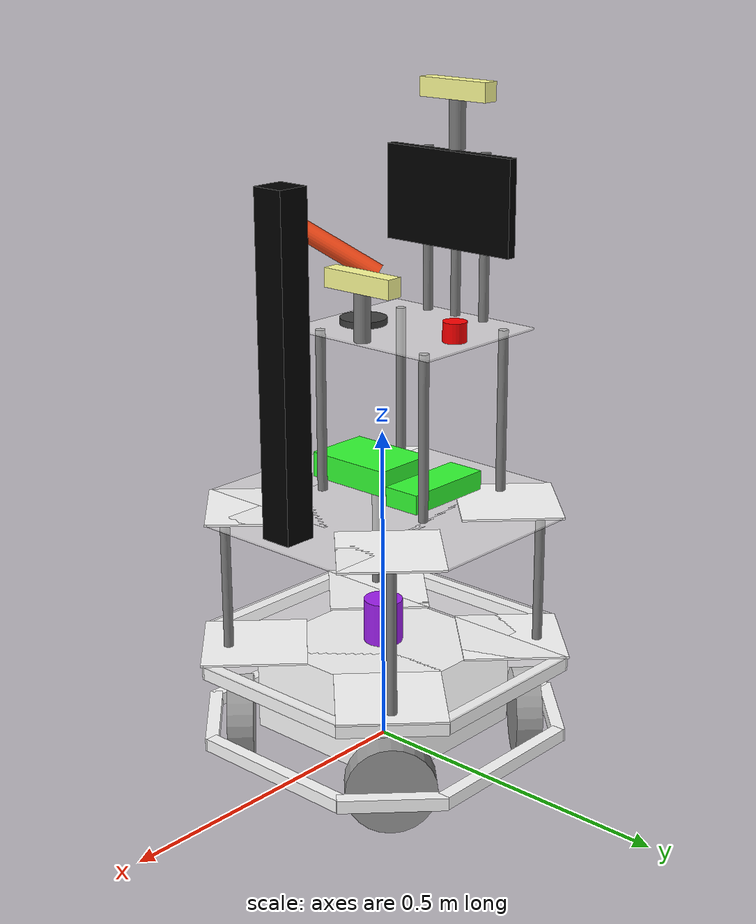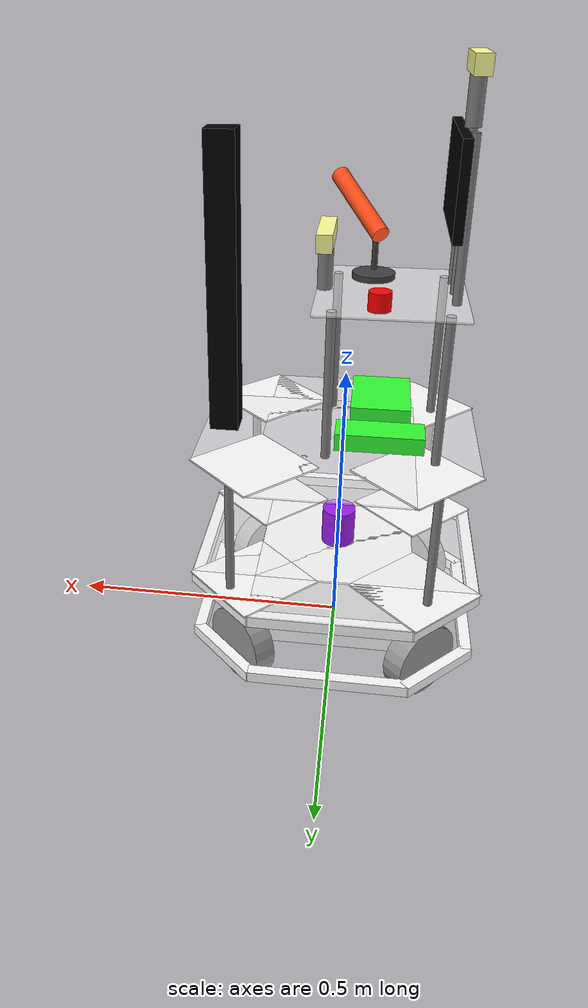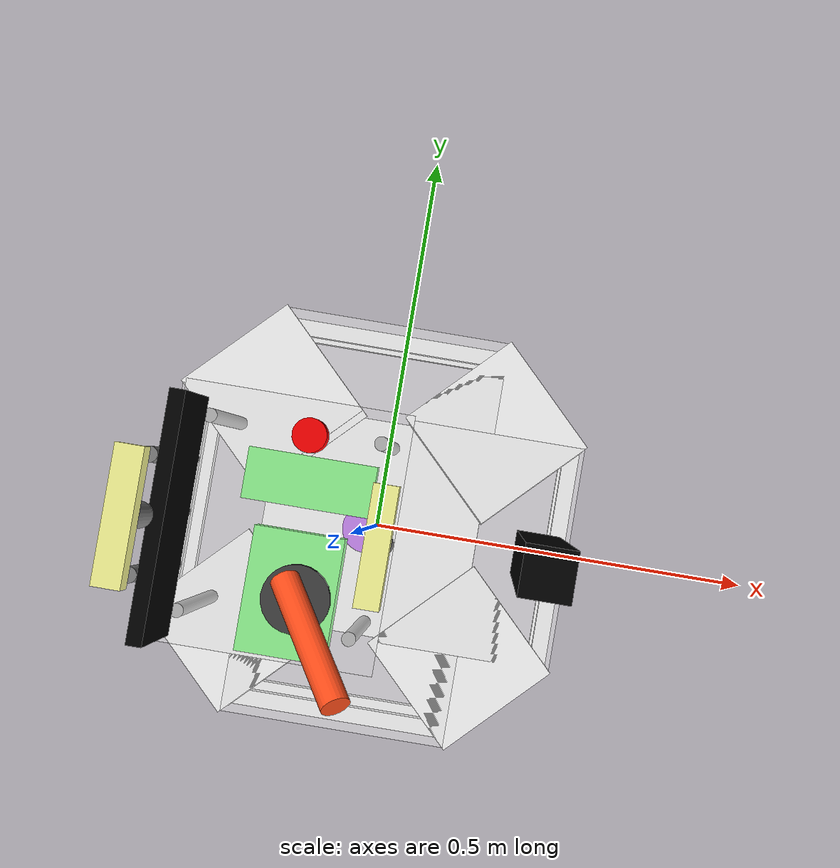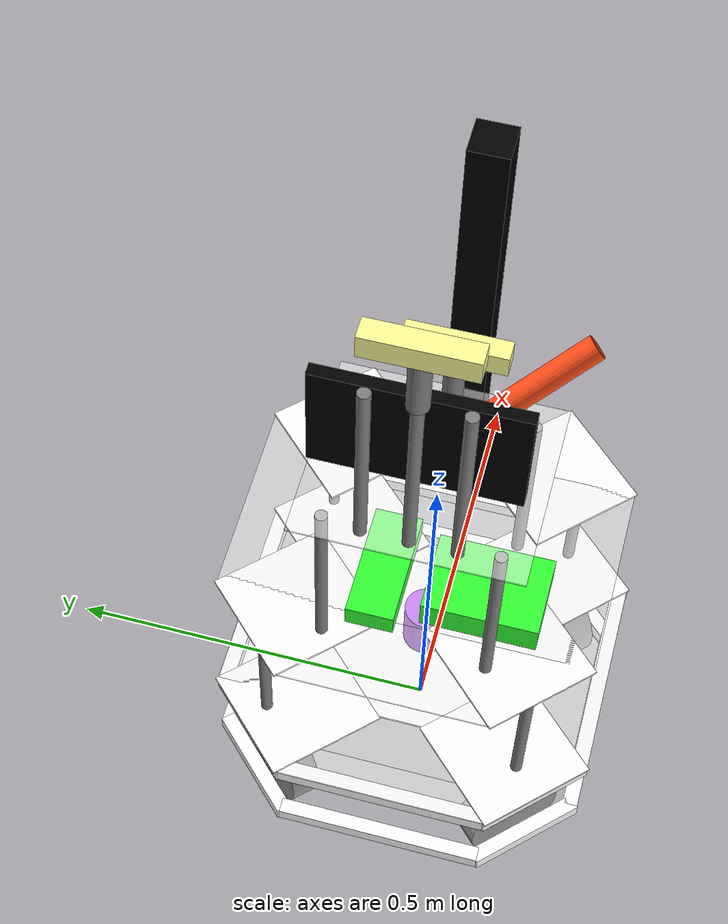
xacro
<?xml version="1.0"?>
<robot xmlns:xacro="http://www.ros.org/wiki/xacro" name="robot">

    <xacro:arg name="prefix" default="" />
    <xacro:arg name="use_sim" default="true" />

    <xacro:property name="package_name" value="main_package" />

    <xacro:include filename="$(find ${package_name})/description/shared/inertial_macros.xacro" />
    <xacro:include filename="$(find ${package_name})/description/shared/materials.xacro" />
    <xacro:include filename="$(find ${package_name})/description/shared/properties.xacro" />
    <xacro:include filename="$(find ${package_name})/description/shared/supports.urdf.xacro" />

    <xacro:include filename="$(find ${package_name})/description/functional/depth_camera.urdf.xacro" />
    <xacro:include filename="$(find ${package_name})/description/functional/display.urdf.xacro" />
    <xacro:include filename="$(find ${package_name})/description/functional/arm/temparm.xacro" />
    <xacro:include filename="$(find ${package_name})/description/functional/lidar.urdf.xacro" />
    <xacro:include filename="$(find ${package_name})/description/functional/mic.urdf.xacro" />
    <xacro:include filename="$(find ${package_name})/description/functional/stop_button.urdf.xacro" />
    <xacro:include filename="$(find ${package_name})/description/functional/wheel/wheel_100mm_light.urdf.xacro" />

    <xacro:include filename="$(find ${package_name})/description/robot/robot_core.xacro" />
    <xacro:include filename="$(find ${package_name})/description/robot/robot_level_1.xacro" />
    <xacro:include filename="$(find ${package_name})/description/robot/robot_level_2.xacro" />
    <xacro:include filename="$(find ${package_name})/description/robot/robot_level_3.xacro" />

    <xacro:include filename="$(find ${package_name})/description/gazebo/robot_gazebo.gazebo.xacro" />
    <xacro:robot_gazebo prefix="" />

    <xacro:include filename="$(find ${package_name})/description/ros2_control/robot_ros2.ros2_control.xacro" />
    <xacro:robot_ros2_control name="robot" use_sim="$(arg use_sim)" />

</robot>

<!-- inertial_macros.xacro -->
<robot xmlns:xacro="http://www.ros.org/wiki/xacro">

    <xacro:macro name="inertial_cylinder" params="mass length radius *origin">
        <inertial>
            <xacro:insert_block name="origin" />
            <mass value="${mass}" />
            <inertia
                ixx="${(1/12) * mass * (3*radius*radius + length*length)}"
                ixy="0.0"
                ixz="0.0"
                iyy="${(1/12) * mass * (3*radius*radius + length*length)}"
                iyz="0.0"
                izz="${(1/2) * mass * (radius*radius)}"
            />
        </inertial>
    </xacro:macro>

    <xacro:macro name="inertial_box" params="mass x y z *origin">
        <inertial>
            <xacro:insert_block name="origin" />
            <mass value="${mass}" />
            <inertia
                ixx="${(1/12) * mass * (y*y + z*z)}"
                ixy="0.0"
                ixz="0.0"
                iyy="${(1/12) * mass * (x*x + z*z)}"
                iyz="0.0"
                izz="${(1/12) * mass * (x*x + y*y)}"
            />
        </inertial>
    </xacro:macro>

    <xacro:macro name="inertial_sphere" params="mass radius *origin">
        <inertial>
            <xacro:insert_block name="origin" />
            <mass value="${mass}" />
            <inertia
                ixx="${(2/5) * mass * (radius*radius)}"
                ixy="0.0"
                ixz="0.0"
                iyy="${(2/5) * mass * (radius*radius)}"
                iyz="0.0"
                izz="${(2/5) * mass * (radius*radius)}"
            />
        </inertial>
    </xacro:macro>

</robot>

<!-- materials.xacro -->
<robot xmlns:xacro="http://www.ros.org/wiki/xacro">

    <material name="black">
        <color rgba="0 0 0 1" />
    </material>

    <material name="grey">
        <color rgba="0.5 0.5 0.5 1" />
    </material>

    <material name="dark_grey">
        <color rgba="0.25 0.25 0.25 1" />
    </material>

    <material name="orange">
        <color rgba="1 0.3 0.1 1" />
    </material>

    <material name="white">
        <color rgba="1 1 1 1" />
    </material>

    <material name="white_transparent">
        <color rgba="1 1 1 0.5" />
    </material>

    <material name="red">
        <color rgba="1 0 0 1" />
    </material>

    <material name="green">
        <color rgba="0.2 1 0.2 1" />
    </material>

    <material name="blue">
        <color rgba="0.2 0.2 1 1" />
    </material>

    <material name="gray">
        <color rgba="0.6 0.6 0.6 1" />
    </material>

    <material name="yellow">
        <color rgba="1 1 0.6 1" />
    </material>

    <material name="purple">
        <color rgba="0.627 0.125 0.941 1" />
    </material>

</robot>

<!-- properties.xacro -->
<robot xmlns:xacro="http://www.ros.org/wiki/xacro">

    <xacro:property name="metal_thickness" value="0.003" />
    <xacro:property name="metal_density" value="7850.0" />

    <xacro:property name="wheel_radius" value="0.0675" />
    <xacro:property name="wheel_thickness" value="0.04" />
    <xacro:property name="wheel_padding" value="0.005" />

    <xacro:property name="chassis_length" value="0.500" />
    <xacro:property name="chassis_width" value="0.500" />

    <xacro:property name="chassis_inner_length" value="0.275" />
    <xacro:property name="chassis_inner_width" value="0.275" />

    <xacro:property name="chassis_outer_side" value="0.272" />
    <xacro:property name="chassis_outer_corner" value="0.160" />
    <xacro:property name="chassis_corner_margin" value="0.080" />
    <xacro:property name="chassis_outer_thickness" value="0.020" />

    <xacro:property name="chassis_height" value="0.140" />
    <xacro:property name="chassis_clearance" value="0.020" />

    <xacro:property name="chassis_empty_space_length" value="${(chassis_length - chassis_outer_thickness*4)/3}" />
    <xacro:property name="chassis_empty_space_width" value="${(chassis_width - chassis_outer_thickness*4)/3}" />

    <xacro:property name="level_1_height_displacement" value="${chassis_clearance + chassis_height}" />
    <xacro:property name="level_1_length_displacement" value="0.000" />
    <xacro:property name="level_1_width_displacement" value="0.000" />

    <xacro:property name="level_1_base_length" value="0.500" />
    <xacro:property name="level_1_base_width" value="0.500" />

    <xacro:property name="level_1_support_height" value="0.225" />
    <xacro:property name="level_1_support_radius" value="0.0075" />
    <xacro:property name="level_1_support_displacement_x" value="${chassis_length/8}" />
    <xacro:property name="level_1_support_displacement_y" value="${chassis_width/8}" />

    <xacro:property name="level_1_corner_length" value="${chassis_outer_corner * level_1_base_length / chassis_length}" />
    <xacro:property name="level_1_corner_width" value="${chassis_outer_corner * level_1_base_width / chassis_width}" />
    <xacro:property name="level_1_empty_space_length" value="${(level_1_base_length - chassis_outer_thickness*4)/3}" />
    <xacro:property name="level_1_empty_space_width" value="${(level_1_base_width - chassis_outer_thickness*4)/3}" />

    <xacro:property name="level_1_center_x"
        value="${-chassis_length/2 + level_1_length_displacement + level_1_base_length/2}" />
    <xacro:property name="level_1_center_y"
        value="${-chassis_width/2 + level_1_width_displacement + level_1_base_width/2}" />
    <xacro:property name="level_1_center_z"
        value="${level_1_height_displacement + metal_thickness}" />

    <xacro:property name="lidar_radius" value="0.030" />
    <xacro:property name="lidar_length" value="0.068" />

    <xacro:property name="lidar_weight" value="0.400" />

    <xacro:property name="level_2_height_displacement"
        value="${level_1_height_displacement + metal_thickness + level_1_support_height}" />
    <xacro:property name="level_2_length_displacement" value="0.020" />
    <xacro:property name="level_2_width_displacement" value="0.020" />

    <xacro:property name="level_2_base_length" value="0.475" />
    <xacro:property name="level_2_base_width" value="0.475" />

    <xacro:property name="level_2_support_height" value="0.253" />
    <xacro:property name="level_2_support_radius" value="0.0075" />
    <xacro:property name="level_2_support_displacement_x"
        value="${(level_2_base_length + chassis_corner_margin)/8}" />
    <xacro:property name="level_2_support_displacement_y"
        value="${(level_2_base_width + chassis_corner_margin)/8}" />

    <xacro:property name="level_2_corner_length" value="${chassis_outer_corner * level_2_base_length / chassis_length}" />
    <xacro:property name="level_2_corner_width" value="${chassis_outer_corner * level_2_base_width / chassis_width}" />
    <xacro:property name="level_2_empty_space_length" value="${(level_2_base_length - chassis_outer_thickness*4)/3}" />
    <xacro:property name="level_2_empty_space_width" value="${(level_2_base_width - chassis_outer_thickness*4)/3}" />

    <xacro:property name="level_2_center_x"
        value="${-chassis_length/2 + level_2_length_displacement + level_2_base_length/2}" />
    <xacro:property name="level_2_center_y"
        value="${-chassis_width/2 + level_2_width_displacement + level_2_base_width/2}" />
    <xacro:property name="level_2_center_z"
        value="${level_2_height_displacement + metal_thickness}" />

    <xacro:property name="cpu_length" value="0.105" />
    <xacro:property name="cpu_width" value="0.145" />
    <xacro:property name="cpu_height" value="0.040" />

    <xacro:property name="cpu_weight" value="0.400" />

    <xacro:property name="cpu_offset_x" value="-0.070" />
    <xacro:property name="cpu_offset_y" value="-0.090" />

    <xacro:property name="network_length" value="0.150" />
    <xacro:property name="network_width" value="0.060" />
    <xacro:property name="network_height" value="0.030" />

    <xacro:property name="network_weight" value="0.150" />

    <xacro:property name="network_offset_x" value="-0.070" />
    <xacro:property name="network_offset_y" value="0.040" />

    <xacro:property name="level_3_height_displacement"
        value="${level_2_height_displacement + metal_thickness + level_2_support_height}" />
    <xacro:property name="level_3_length_displacement" value="0.065" />
    <xacro:property name="level_3_width_displacement" value="0.114" />

    <xacro:property name="level_3_base_length" value="0.240" />
    <xacro:property name="level_3_base_width" value="0.272" />

    <xacro:property name="level_3_support_height" value="0.252" />
    <xacro:property name="level_3_support_radius" value="0.0075" />
    <xacro:property name="level_3_support_displacement_x" value="${level_3_base_length/8}" />
    <xacro:property name="level_3_support_displacement_y" value="${level_3_base_width/8}" />

    <xacro:property name="level_3_center_x"
        value="${-chassis_length/2 + level_3_length_displacement + level_3_base_length/2}" />
    <xacro:property name="level_3_center_y"
        value="${-chassis_width/2 + level_3_width_displacement + level_3_base_width/2}" />
    <xacro:property name="level_3_center_z"
        value="${level_3_height_displacement + metal_thickness}" />

    <xacro:property name="intel_camera_length" value="0.026" />
    <xacro:property name="intel_camera_width" value="0.124" />
    <xacro:property name="intel_camera_height" value="0.029" />

    <xacro:property name="intel_camera_and_fixture_weight" value="0.380" />

    <xacro:property name="intel_camera_fixture_radius" value="0.0125" />
    <xacro:property name="intel_camera_fixture_length" value="0.073" />

    <xacro:property name="display_length" value="0.015" />
    <xacro:property name="display_width" value="0.235" />
    <xacro:property name="display_height" value="0.145" />

    <xacro:property name="display_weight" value="0.97" />

    <xacro:property name="display_support_radius" value="0.0075" />
    <xacro:property name="display_support_height" value="0.252" />

    <xacro:property name="display_offset_x" value="-0.100" />
    <xacro:property name="display_offset_y" value="0.055" />

    <xacro:property name="mic_base_length" value="0.010" />
    <xacro:property name="mic_base_radius" value="0.036" />

    <xacro:property name="mic_support_length" value="0.070" />
    <xacro:property name="mic_support_radius" value="0.005" />

    <xacro:property name="mic_length" value="0.150" />
    <xacro:property name="mic_radius" value="0.015" />

    <xacro:property name="mic_weight" value="0.05" />

    <xacro:property name="mic_offset_x" value="0.030" />
    <xacro:property name="mic_offset_y" value="0.070" />

    <xacro:property name="stop_button_radius" value="0.018" />
    <xacro:property name="stop_button_length" value="0.030" />
    <xacro:property name="stop_button_weight" value="0.046" />

    <xacro:property name="stop_button_offset_y" value="0.080" />

</robot>

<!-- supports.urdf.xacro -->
<robot xmlns:xacro="http://www.ros.org/wiki/xacro">

    <xacro:macro name="corner_frame" params="nameprefix parent bx by bz *origin">
        <joint name="${nameprefix}_joint" type="fixed">
            <parent link="${parent}" />
            <child link="${nameprefix}_link" />
            <xacro:insert_block name="origin" />
        </joint>

        <link name="${nameprefix}_link">
            <visual>
                <geometry>
                    <box size="${bx} ${by} ${bz}" />
                </geometry>
                <material name="white" />
            </visual>
            <collision>
                <geometry>
                    <box size="${bx} ${by} ${bz}" />
                </geometry>
            </collision>
            <xacro:inertial_box
                mass="${bx * by * metal_thickness * 4 * metal_density}"
                x="${bx}" y="${by}"
                z="${bz}">
                <origin xyz="0 0 0" rpy="0 0 0" />
            </xacro:inertial_box>
        </link>

        <gazebo reference="${nameprefix}_link">
            <material>Gazebo/White</material>
        </gazebo>
    </xacro:macro>

    <xacro:macro name="side_frame" params="nameprefix bx by bz *origin">
        <joint name="${nameprefix}_joint" type="fixed">
            <parent link="base_link" />
            <child link="${nameprefix}_link" />
            <xacro:insert_block name="origin" />
        </joint>

        <link name="${nameprefix}_link">
            <visual>
                <geometry>
                    <box size="${bx} ${by} ${bz}" />
                </geometry>
                <material name="white" />
            </visual>
            <collision>
                <geometry>
                    <box size="${bx} ${by} ${bz}" />
                </geometry>
            </collision>
            <xacro:inertial_box
                mass="${bx * by * metal_thickness * 4 * metal_density}"
                x="${bx}" y="${by}"
                z="${bz}">
                <origin xyz="0 0 0" rpy="0 0 0" />
            </xacro:inertial_box>
        </link>

        <gazebo reference="${nameprefix}_link">
            <material>Gazebo/White</material>
        </gazebo>
    </xacro:macro>

    <xacro:macro name="support_cylinder" params="nameprefix parent length radius *origin">
        <joint name="${nameprefix}_joint" type="fixed">
            <parent link="${parent}" />
            <child link="${nameprefix}_link" />
            <xacro:insert_block name="origin" />
        </joint>

        <link name="${nameprefix}_link">
            <visual>
                <geometry>
                    <cylinder radius="${radius}" length="${length}" />
                </geometry>
                <material name="grey" />
            </visual>
            <collision>
                <geometry>
                    <cylinder radius="${radius}" length="${length}" />
                </geometry>
            </collision>
            <xacro:inertial_cylinder
                mass="${2 * pi * radius * length * metal_thickness * metal_density}"
                radius="${radius}" length="${length}">
                <origin xyz="0 0 0" rpy="0 0 0" />
            </xacro:inertial_cylinder>
        </link>

        <gazebo reference="${nameprefix}_link">
            <material>Gazebo/Grey</material>
        </gazebo>
    </xacro:macro>

    <xacro:macro name="base_plate" params="nameprefix parent bx by bz *origin">
        <joint name="${nameprefix}_joint" type="fixed">
            <parent link="${parent}" />
            <child link="${nameprefix}_link" />
            <xacro:insert_block name="origin" />
        </joint>

        <link name="${nameprefix}_link">
            <visual>
                <geometry>
                    <box size="${bx} ${by} ${bz}" />
                </geometry>
                <material name="white_transparent" />
            </visual>
            <collision>
                <geometry>
                    <box size="${bx} ${by} ${bz}" />
                </geometry>
            </collision>
            <xacro:inertial_box
                mass="${bx * by * metal_thickness * 4 * metal_density}"
                x="${bx}" y="${by}"
                z="${bz}">
                <origin xyz="0 0 0" rpy="0 0 0" />
            </xacro:inertial_box>
        </link>

        <gazebo reference="${nameprefix}_link">
            <material>Gazebo/White</material>
        </gazebo>
    </xacro:macro>
</robot>

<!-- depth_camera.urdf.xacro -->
<robot xmlns:xacro="http://www.ros.org/wiki/xacro">

    <xacro:macro name="depth_camera"
        params="nameprefix parent camera_length camera_width camera_height mass fixture_radius fixture_length *origin">

        <joint name="${nameprefix}_fixture_joint" type="fixed">
            <parent link="${parent}" />
            <child link="${nameprefix}_fixture_link" />
            <xacro:insert_block name="origin" />
        </joint>

        <link name="${nameprefix}_fixture_link">
            <visual>
                <geometry>
                    <cylinder radius="${fixture_radius}" length="${fixture_length}" />
                </geometry>
                <material name="grey" />
            </visual>
            <collision>
                <geometry>
                    <cylinder radius="${fixture_radius}" length="${fixture_length}" />
                </geometry>
            </collision>
            <xacro:inertial_cylinder
                mass="${mass}"
                radius="${fixture_radius}" length="${fixture_length}">
                <origin xyz="0 0 0" rpy="0 0 0" />
            </xacro:inertial_cylinder>
        </link>

        <gazebo reference="${nameprefix}_fixture_link">
            <material>Gazebo/Grey</material>
        </gazebo>

        <joint name="${nameprefix}_joint" type="fixed">
            <parent link="${nameprefix}_fixture_link" />
            <child link="${nameprefix}_link" />
            <origin xyz="0 0 ${camera_height/2 + fixture_length/2}" rpy="0 0 0" />
        </joint>

        <link name="${nameprefix}_link">
            <visual>
                <geometry>
                    <box size="${camera_length} ${camera_width} ${camera_height}" />
                </geometry>
                <material name="yellow" />
            </visual>
        </link>

        <joint name="${nameprefix}_optical_joint" type="fixed">
            <parent link="${nameprefix}_link" />
            <child link="${nameprefix}_link_optical" />
            <origin xyz="0 0 0" rpy="${-pi/2} 0 ${-pi/2}" />
        </joint>

        <link name="${nameprefix}_link_optical"></link>

        <gazebo reference="${nameprefix}_link">
            <material>Gazebo/Yellow</material>
            <sensor name="${nameprefix}" type="depth">
                <pose> 0 0 0 0 0 0 </pose>
                <visualize>true</visualize>
                <update_rate>10</update_rate>
                <camera>
                    <horizontal_fov>1.089</horizontal_fov>
                    <image>
                        <format>B8G8R8</format>
                        <width>1280</width>
                        <height>720</height>
                    </image>
                    <clip>
                        <near>0.05</near>
                        <far>8.0</far>
                    </clip>
                </camera>
                <plugin name="${nameprefix}_controller" filename="libgazebo_ros_camera.so">
                    <frame_name>${nameprefix}_link_optical</frame_name>
                    <min_depth>0.1</min_depth>
                    <max_depth>100.0</max_depth>
                </plugin>
            </sensor>
        </gazebo>

    </xacro:macro>

</robot>

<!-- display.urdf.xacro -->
<robot xmlns:xacro="http://www.ros.org/wiki/xacro">

    <xacro:macro name="display" params="nameprefix parent bx by bz mass *origin">
        <joint name="${nameprefix}_joint" type="fixed">
            <parent link="${parent}" />
            <child link="${nameprefix}_link" />
            <xacro:insert_block name="origin" />
        </joint>

        <link name="${nameprefix}_link">
            <visual>
                <geometry>
                    <box size="${bx} ${by} ${bz}" />
                </geometry>
                <material name="black" />
            </visual>
            <collision>
                <geometry>
                    <box size="${bx} ${by} ${bz}" />
                </geometry>
            </collision>
            <xacro:inertial_box
                mass="${mass}"
                x="${bx}" y="${by}" z="${bz}">
                <origin xyz="0 0 0" rpy="0 0 0" />
            </xacro:inertial_box>
        </link>

        <gazebo reference="${nameprefix}_link">
            <material>Gazebo/Black</material>
        </gazebo>
    </xacro:macro>

</robot>

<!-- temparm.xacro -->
<robot xmlns:xacro="http://www.ros.org/wiki/xacro">

    <xacro:macro name="temparm" params="nameprefix parent bx by bz mass *origin">
        <joint name="${nameprefix}_joint" type="fixed">
            <parent link="${parent}" />
            <child link="${nameprefix}_link" />
            <xacro:insert_block name="origin" />
        </joint>

        <link name="${nameprefix}_link">
            <visual>
                <geometry>
                    <box size="${bx} ${by} ${bz}" />
                </geometry>
                <material name="black" />
            </visual>
            <collision>
                <geometry>
                    <box size="${bx} ${by} ${bz}" />
                </geometry>
            </collision>
            <xacro:inertial_box
                mass="${mass}"
                x="${bx}" y="${by}" z="${bz}">
                <origin xyz="0 0 0" rpy="0 0 0" />
            </xacro:inertial_box>
        </link>

        <gazebo reference="${nameprefix}_link">
            <material>Gazebo/Black</material>
        </gazebo>
    </xacro:macro>

</robot>

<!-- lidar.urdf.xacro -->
<robot xmlns:xacro="http://www.ros.org/wiki/xacro">

    <xacro:macro name="lidar" params="nameprefix parent length radius mass *origin *frame_name">
        <joint name="${nameprefix}_joint" type="fixed">
            <parent link="${parent}" />
            <child link="${nameprefix}_frame" />
            <xacro:insert_block name="origin" />
        </joint>

        <link name="${nameprefix}_frame">
            <visual>
                <geometry>
                    <cylinder length="${length}" radius="${radius}" />
                </geometry>
                <material name="purple" />
            </visual>
            <collision>
                <geometry>
                    <cylinder length="${length}" radius="${radius}" />
                </geometry>
            </collision>
            <xacro:inertial_cylinder
                mass="${mass}"
                length="${length}" radius="${radius}">
                <origin xyz="0 0 0" rpy="0 0 0" />
            </xacro:inertial_cylinder>
        </link>

        <gazebo reference="${nameprefix}_frame">
            <material>Gazebo/Purple</material>
            <sensor name="${nameprefix}" type="ray">
                <pose> 0 0 0 0 0 0 </pose>
                <visualize>false</visualize>
                <update_rate>10</update_rate>
                <ray>
                    <scan>
                        <horizontal>
                            <sample>360</sample>
                            <resolution>1</resolution>
                            <min_angle>-3.14</min_angle>
                            <max_angle>3.14</max_angle>
                        </horizontal>
                    </scan>
                    <range>
                        <min>0.3</min>
                        <max>12</max>
                        <resolution>0.01</resolution>
                    </range>
                </ray>
                <plugin name="${nameprefix}_controller" filename="libgazebo_ros_ray_sensor.so">
                    <ros>

                        <argument>~/out:=scan</argument>
                    </ros>
                    <output_type>sensor_msgs/LaserScan</output_type>

                    <xacro:insert_block name="frame_name" />
                </plugin>
            </sensor>
        </gazebo>
    </xacro:macro>

</robot>

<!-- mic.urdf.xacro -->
<robot xmlns:xacro="http://www.ros.org/wiki/xacro">

    <xacro:macro name="mic"
        params="nameprefix parent base_length base_radius support_length support_radius mic_length mic_radius mass *origin">

        <joint name="${nameprefix}_base_joint" type="fixed">
            <parent link="${parent}" />
            <child link="${nameprefix}_base_link" />
            <xacro:insert_block name="origin" />
        </joint>

        <link name="${nameprefix}_base_link">
            <visual>
                <geometry>
                    <cylinder length="${base_length}" radius="${base_radius}" />
                </geometry>
                <material name="dark_grey" />
            </visual>
            <collision>
                <geometry>
                    <cylinder length="${base_length}" radius="${base_radius}" />
                </geometry>
            </collision>
            <xacro:inertial_cylinder
                mass="${mass/4}"
                length="${base_length}" radius="${base_radius}">
                <origin xyz="0 0 0" rpy="0 0 0" />
            </xacro:inertial_cylinder>
        </link>

        <gazebo reference="${nameprefix}_base_link">
            <material>Gazebo/DarkGrey</material>
        </gazebo>

        <joint name="${nameprefix}_support_joint" type="fixed">
            <parent link="${nameprefix}_base_link" />
            <child link="${nameprefix}_support_link" />
            <origin xyz="0 0 ${base_length + support_length/2}" rpy="0 0 0" />
        </joint>

        <link name="${nameprefix}_support_link">
            <visual>
                <geometry>
                    <cylinder length="${support_length}" radius="${support_radius}" />
                </geometry>
                <material name="dark_grey" />
            </visual>
            <collision>
                <geometry>
                    <cylinder length="${support_length}" radius="${support_radius}" />
                </geometry>
            </collision>
            <xacro:inertial_cylinder
                mass="${mass/4}"
                length="${support_length}" radius="${support_radius}">
                <origin xyz="0 0 0" rpy="0 0 0" />
            </xacro:inertial_cylinder>
        </link>

        <gazebo reference="${nameprefix}_support_link">
            <material>Gazebo/DarkGrey</material>
        </gazebo>

        <joint name="${nameprefix}_joint" type="fixed">
            <parent link="${nameprefix}_support_link" />
            <child link="${nameprefix}_link" />
            <origin xyz="${mic_length/5} -${mic_length/5} ${support_length/2 + mic_length/5}" rpy="${pi/4} ${pi/4} 0" />
        </joint>

        <link name="${nameprefix}_link">
            <visual>
                <geometry>
                    <cylinder length="${mic_length}" radius="${mic_radius}" />
                </geometry>
                <material name="orange" />
            </visual>
            <collision>
                <geometry>
                    <cylinder length="${mic_length}" radius="${mic_radius}" />
                </geometry>
            </collision>
            <xacro:inertial_cylinder
                mass="${mass/2}"
                length="${mic_length}" radius="${mic_radius}">
                <origin xyz="0 0 0" rpy="0 0 0" />
            </xacro:inertial_cylinder>
        </link>

        <gazebo reference="${nameprefix}_link">
            <material>Gazebo/Orange</material>
        </gazebo>
    </xacro:macro>

</robot>

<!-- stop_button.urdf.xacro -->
<robot xmlns:xacro="http://www.ros.org/wiki/xacro">

    <xacro:macro name="stop_button" params="nameprefix parent length radius mass *origin">
        <joint name="${nameprefix}_joint" type="fixed">
            <parent link="${parent}" />
            <child link="${nameprefix}_link" />
            <xacro:insert_block name="origin" />
        </joint>

        <link name="${nameprefix}_link">
            <visual>
                <geometry>
                    <cylinder length="${length}" radius="${radius}" />
                </geometry>
                <material name="red" />
            </visual>
            <collision>
                <geometry>
                    <cylinder length="${length}" radius="${radius}" />
                </geometry>
            </collision>
            <xacro:inertial_cylinder
                mass="${mass}"
                length="${length}" radius="${radius}">
                <origin xyz="0 0 0" rpy="0 0 0" />
            </xacro:inertial_cylinder>
        </link>

        <gazebo reference="${nameprefix}_link">
            <material>Gazebo/Red</material>
        </gazebo>
    </xacro:macro>

</robot>

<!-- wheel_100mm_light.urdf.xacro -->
<robot xmlns:xacro="http://ros.org/wiki/xacro">

  <xacro:macro name="omni_wheel" params="prefix parent *origin">
    <joint name="${prefix}_shaft_joint" type="continuous">
      <parent link="${parent}" />
      <child link="${prefix}_housing_link" />
      <xacro:insert_block name="origin" />
      <axis xyz="0 0 1" />
      <dynamics damping="0.7" />
    </joint>
    <transmission name="${prefix}_shaft_trans">
      <type>transmission_interface/SimpleTransmission</type>
      <joint name="${prefix}_shaft_joint">
        <hardwareInterface>hardware_interface/VelocityJointInterface</hardwareInterface>
      </joint>
      <actuator name="${prefix}_shaft_motor">
        <hardwareInterface>hardware_interface/VelocityJointInterface</hardwareInterface>
        <mechanicalReduction>1</mechanicalReduction>
      </actuator>
    </transmission>

    <link name="${prefix}_housing_link">
      <visual>
        <geometry>
          <cylinder length="0.040" radius="0.0675" />
        </geometry>
        <origin xyz="0 0 0" rpy="0 0 0" />
        <material name="gray" />
      </visual>
      <collision>
        <geometry>
          <sphere radius="0.0675" />
        </geometry>
        <origin xyz="0 0 0" rpy="0 0 0" />
        <material name="gray" />
      </collision>

      <inertial>
        <mass value="0.25" />
        <inertia ixx="0.00235" ixy="0" ixz="0" iyy="0.00235" iyz="0" izz="0.015" />
      </inertial>
    </link>
    <gazebo reference="${prefix}_housing_link">
      <material>Gazebo/Gray</material>

    </gazebo>

  </xacro:macro>
</robot>

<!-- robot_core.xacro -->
<robot xmlns:xacro="http://www.ros.org/wiki/xacro">

    <link name="base_link"></link>

    <joint name="base_footprint_joint" type="fixed">
        <parent link="base_link" />
        <child link="base_footprint" />
        <origin xyz="0 0 0" rpy="0 0 0" />
    </joint>

    <link name="base_footprint">
    </link>

    <joint name="chassis_joint" type="fixed">
        <parent link="base_link" />
        <child link="chassis" />
        <origin xyz="0 0 0" />
    </joint>

    <link name="chassis">
        <visual>
            <origin xyz="0 0 ${chassis_height/2 + chassis_clearance}" />
            <geometry>
                <box size="${chassis_inner_length} ${chassis_inner_width} ${chassis_height}" />
            </geometry>
            <material name="white" />
        </visual>
        <collision>
            <origin xyz="0 0 ${chassis_height/2 + chassis_clearance}" />
            <geometry>
                <box size="${chassis_inner_length} ${chassis_inner_width} ${chassis_height}" />
            </geometry>
        </collision>
        <xacro:inertial_box mass="${chassis_inner_width * chassis_inner_length * metal_thickness * metal_density}"
            x="${chassis_inner_length}" y="${chassis_inner_width}" z="${chassis_height}">
            <origin xyz="0 0 ${chassis_height/2 + chassis_clearance}" rpy="0 0 0" />
        </xacro:inertial_box>
    </link>

    <gazebo reference="chassis">
        <material>Gazebo/White</material>
    </gazebo>

    <xacro:omni_wheel prefix="wheel1" parent="base_link">
        <origin
            xyz="-${chassis_inner_length/2 + wheel_thickness/2} ${chassis_inner_width/2 + wheel_thickness/2} ${wheel_radius/2}"
            rpy="0 ${pi/2} ${pi*3/4}" />

    </xacro:omni_wheel>

    <xacro:omni_wheel prefix="wheel0" parent="base_link">
        <origin
            xyz="${chassis_inner_length/2 + wheel_thickness/2} ${chassis_inner_width/2 + wheel_thickness/2} ${wheel_radius/2}"
            rpy="0 ${pi/2} ${pi/4}" />

    </xacro:omni_wheel>

    <xacro:omni_wheel prefix="wheel3" parent="base_link">
        <origin
            xyz="-${chassis_inner_length/2 + wheel_thickness/2} -${chassis_inner_width/2 + wheel_thickness/2} ${wheel_radius/2}"
            rpy="0 ${pi/2} ${-pi*3/4}" />

    </xacro:omni_wheel>

    <xacro:omni_wheel prefix="wheel2" parent="base_link">
        <origin
            xyz="${chassis_inner_length/2 + wheel_thickness/2} -${chassis_inner_width/2 + wheel_thickness/2} ${wheel_radius/2}"
            rpy="0 ${pi/2} ${-pi/4}" />

    </xacro:omni_wheel>

    <xacro:corner_frame nameprefix="frame_left_corner_top" parent="base_link" bx="${chassis_outer_corner}"
        by="${chassis_outer_thickness}"
        bz="${chassis_outer_thickness}">
        <origin
            xyz="-${chassis_length/2 - chassis_empty_space_length/2 + chassis_outer_thickness*135/360} ${chassis_width/2 - chassis_empty_space_width/2 + chassis_outer_thickness*135/360} ${chassis_height + chassis_clearance - chassis_outer_thickness/2}"
            rpy="0 0 0.785" />
    </xacro:corner_frame>

    <xacro:corner_frame nameprefix="frame_left_corner_bottom" parent="base_link" bx="${chassis_outer_corner}"
        by="${chassis_outer_thickness}" bz="${chassis_outer_thickness}">
        <origin
            xyz="-${chassis_length/2 - chassis_empty_space_length/2 + chassis_outer_thickness*135/360} ${chassis_width/2 - chassis_empty_space_width/2 + chassis_outer_thickness*135/360} ${chassis_clearance + chassis_outer_thickness/2}"
            rpy="0 0 0.785" />
    </xacro:corner_frame>

    <xacro:corner_frame nameprefix="frame_front_corner_top" parent="base_link" bx="${chassis_outer_corner}"
        by="${chassis_outer_thickness}"
        bz="${chassis_outer_thickness}">
        <origin
            xyz="${chassis_length/2 - chassis_empty_space_length/2 + chassis_outer_thickness*135/360} ${chassis_width/2 - chassis_empty_space_width/2 + chassis_outer_thickness*135/360} ${chassis_height + chassis_clearance - chassis_outer_thickness/2}"
            rpy="0 0 -0.785" />
    </xacro:corner_frame>

    <xacro:corner_frame nameprefix="frame_front_corner_bottom" parent="base_link" bx="${chassis_outer_corner}"
        by="${chassis_outer_thickness}" bz="${chassis_outer_thickness}">
        <origin
            xyz="${chassis_length/2 - chassis_empty_space_length/2 + chassis_outer_thickness*135/360} ${chassis_width/2 - chassis_empty_space_width/2 + chassis_outer_thickness*135/360} ${chassis_clearance + chassis_outer_thickness/2}"
            rpy="0 0 -0.785" />
    </xacro:corner_frame>

    <xacro:corner_frame nameprefix="frame_right_corner_top" parent="base_link" bx="${chassis_outer_corner}"
        by="${chassis_outer_thickness}"
        bz="${chassis_outer_thickness}">
        <origin
            xyz="${chassis_length/2 - chassis_empty_space_length/2 + chassis_outer_thickness*135/360} -${chassis_width/2 - chassis_empty_space_width/2 + chassis_outer_thickness*135/360} ${chassis_height + chassis_clearance - chassis_outer_thickness/2}"
            rpy="0 0 0.785" />
    </xacro:corner_frame>

    <xacro:corner_frame nameprefix="frame_right_corner_bottom" parent="base_link" bx="${chassis_outer_corner}"
        by="${chassis_outer_thickness}" bz="${chassis_outer_thickness}">
        <origin
            xyz="${chassis_length/2 - chassis_empty_space_length/2 + chassis_outer_thickness*135/360} -${chassis_width/2 - chassis_empty_space_width/2 + chassis_outer_thickness*135/360} ${chassis_clearance + chassis_outer_thickness/2}"
            rpy="0 0 0.785" />
    </xacro:corner_frame>

    <xacro:corner_frame nameprefix="frame_back_corner_top" parent="base_link" bx="${chassis_outer_corner}"
        by="${chassis_outer_thickness}"
        bz="${chassis_outer_thickness}">
        <origin
            xyz="-${chassis_length/2 - chassis_empty_space_length/2 + chassis_outer_thickness*135/360} -${chassis_width/2 - chassis_empty_space_width/2 + chassis_outer_thickness*135/360} ${chassis_height + chassis_clearance - chassis_outer_thickness/2}"
            rpy="0 0 -0.785" />
    </xacro:corner_frame>

    <xacro:corner_frame nameprefix="frame_back_corner_bottom" parent="base_link" bx="${chassis_outer_corner}"
        by="${chassis_outer_thickness}" bz="${chassis_outer_thickness}">
        <origin
            xyz="-${chassis_length/2 - chassis_empty_space_length/2 + chassis_outer_thickness*135/360} -${chassis_width/2 - chassis_empty_space_width/2 + chassis_outer_thickness*135/360} ${chassis_clearance + chassis_outer_thickness/2}"
            rpy="0 0 -0.785" />
    </xacro:corner_frame>

    <xacro:side_frame nameprefix="frame_left_front_side_top" bx="${chassis_outer_side}" by="${chassis_outer_thickness}"
        bz="${chassis_outer_thickness}">
        <origin
            xyz="0 ${chassis_width/2 - chassis_outer_thickness/2} ${chassis_height + chassis_clearance - chassis_outer_thickness/2}"
            rpy="0 0 0" />
    </xacro:side_frame>

    <xacro:side_frame nameprefix="frame_left_front_side_bottom" bx="${chassis_outer_side}"
        by="${chassis_outer_thickness}" bz="${chassis_outer_thickness}">
        <origin xyz="0 ${chassis_width/2 - chassis_outer_thickness/2} ${chassis_clearance + chassis_outer_thickness/2}"
            rpy="0 0 0" />
    </xacro:side_frame>

    <xacro:side_frame nameprefix="frame_front_right_side_top" bx="${chassis_outer_thickness}" by="${chassis_outer_side}"
        bz="${chassis_outer_thickness}">
        <origin
            xyz="${chassis_length/2 - chassis_outer_thickness/2} 0 ${chassis_height + chassis_clearance - chassis_outer_thickness/2}"
            rpy="0 0 0" />
    </xacro:side_frame>

    <xacro:side_frame nameprefix="frame_front_right_side_bottom" bx="${chassis_outer_thickness}"
        by="${chassis_outer_side}" bz="${chassis_outer_thickness}">
        <origin xyz="${chassis_length/2 - chassis_outer_thickness/2} 0 ${chassis_clearance + chassis_outer_thickness/2}"
            rpy="0 0 0" />
    </xacro:side_frame>

    <xacro:side_frame nameprefix="frame_right_back_side_top" bx="${chassis_outer_side}" by="${chassis_outer_thickness}"
        bz="${chassis_outer_thickness}">
        <origin
            xyz="0 -${chassis_width/2 - chassis_outer_thickness/2} ${chassis_height + chassis_clearance - chassis_outer_thickness/2}"
            rpy="0 0 0" />
    </xacro:side_frame>

    <xacro:side_frame nameprefix="frame_right_back_side_bottom" bx="${chassis_outer_side}"
        by="${chassis_outer_thickness}" bz="${chassis_outer_thickness}">
        <origin xyz="0 -${chassis_width/2 - chassis_outer_thickness/2} ${chassis_clearance + chassis_outer_thickness/2}"
            rpy="0 0 0" />
    </xacro:side_frame>

    <xacro:side_frame nameprefix="frame_back_left_side_top" bx="${chassis_outer_thickness}" by="${chassis_outer_side}"
        bz="${chassis_outer_thickness}">
        <origin
            xyz="-${chassis_length/2 - chassis_outer_thickness/2} 0 ${chassis_height + chassis_clearance - chassis_outer_thickness/2}"
            rpy="0 0 0" />
    </xacro:side_frame>

    <xacro:side_frame nameprefix="frame_back_left_side_bottom" bx="${chassis_outer_thickness}"
        by="${chassis_outer_side}" bz="${chassis_outer_thickness}">
        <origin
            xyz="-${chassis_length/2 - chassis_outer_thickness/2} 0 ${chassis_clearance + chassis_outer_thickness/2}"
            rpy="0 0 0" />
    </xacro:side_frame>

</robot>

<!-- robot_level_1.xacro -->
<robot xmlns:xacro="http://www.ros.org/wiki/xacro">

    <joint name="level_1_center_joint" type="fixed">
        <parent link="base_link" />
        <child link="level_1_center_link" />
        <origin
            xyz="${level_1_center_x} ${level_1_center_y} ${level_1_center_z}"
            ryp="0 0 0" />
    </joint>

    <link name="level_1_center_link">
    </link>

    <xacro:lidar nameprefix="laser"
        parent="level_1_center_link"
        length="${lidar_length}"
        radius="${lidar_radius}"
        mass="${lidar_weight}">
        <origin xyz="0 0 ${lidar_length/2}" rpy="0 0 0" />
        <frame_name>laser_frame</frame_name>
    </xacro:lidar>

    <xacro:base_plate nameprefix="level_1_base_plate_x"
        parent="level_1_center_link"
        bx="${level_1_base_length}"
        by="${chassis_inner_width}"
        bz="${metal_thickness}">
        <origin xyz="0 0 ${-metal_thickness/2}"
            rpy="0 0 0" />
    </xacro:base_plate>

    <xacro:base_plate nameprefix="level_1_base_plate_y"
        parent="level_1_center_link"
        bx="${chassis_inner_length}"
        by="${level_1_base_width}"
        bz="${metal_thickness}">
        <origin xyz="0 0 ${-metal_thickness/2}"
            rpy="0 0 0" />
    </xacro:base_plate>

    <xacro:corner_frame nameprefix="l1_frame_left_corner"
        parent="level_1_center_link"
        bx="${level_1_corner_length}"
        by="${level_1_corner_width}"
        bz="${metal_thickness}">
        <origin
            xyz="-${level_1_base_length/2 - level_1_empty_space_length/2 - chassis_outer_thickness - level_1_corner_length/2 + level_1_corner_length*135/360} ${level_1_base_width/2 - level_1_empty_space_width/2 - chassis_outer_thickness - level_1_corner_width/2 + level_1_corner_width*135/360} ${-metal_thickness/2}"
            rpy="0 0 0.785" />
    </xacro:corner_frame>

    <xacro:corner_frame nameprefix="l1_frame_front_corner"
        parent="level_1_center_link"
        bx="${level_1_corner_length}"
        by="${level_1_corner_width}"
        bz="${metal_thickness}">
        <origin
            xyz="${level_1_base_length/2 - level_1_empty_space_length/2 - chassis_outer_thickness - level_1_corner_length/2 + level_1_corner_length*135/360} ${level_1_base_width/2 - level_1_empty_space_width/2 - chassis_outer_thickness - level_1_corner_width/2 + level_1_corner_width*135/360} ${-metal_thickness/2}"
            rpy="0 0 -0.785" />
    </xacro:corner_frame>

    <xacro:corner_frame nameprefix="l1_frame_right_corner"
        parent="level_1_center_link"
        bx="${level_1_corner_length}"
        by="${level_1_corner_width}"
        bz="${metal_thickness}">
        <origin
            xyz="${level_1_base_length/2 - level_1_empty_space_length/2 - chassis_outer_thickness - level_1_corner_length/2 + level_1_corner_length*135/360} -${level_1_base_width/2 - level_1_empty_space_width/2 - chassis_outer_thickness - level_1_corner_width/2 + level_1_corner_width*135/360} ${-metal_thickness/2}"
            rpy="0 0 0.785" />
    </xacro:corner_frame>

    <xacro:corner_frame nameprefix="l1_frame_back_corner"
        parent="level_1_center_link"
        bx="${level_1_corner_length}"
        by="${level_1_corner_width}"
        bz="${metal_thickness}">
        <origin
            xyz="-${level_1_base_length/2 - level_1_empty_space_length/2 - chassis_outer_thickness - level_1_corner_length/2 + level_1_corner_length*135/360} -${level_1_base_width/2 - level_1_empty_space_width/2 - chassis_outer_thickness - level_1_corner_width/2 + level_1_corner_width*135/360} ${-metal_thickness/2}"
            rpy="0 0 -0.785" />
    </xacro:corner_frame>

    <xacro:support_cylinder nameprefix="l1_front_left_support_cylinder"
        parent="level_2_center_link"
        length="${level_1_support_height}"
        radius="${level_1_support_radius}">
        <origin
            xyz="${level_2_base_length/2 - level_2_support_displacement_x} ${level_2_base_width/2 - level_2_support_displacement_y} ${-level_1_support_height/2 - metal_thickness}"
            rpy="0 0 0" />
    </xacro:support_cylinder>

    <xacro:support_cylinder nameprefix="l1_front_right_support_cylinder"
        parent="level_2_center_link"
        length="${level_1_support_height}"
        radius="${level_1_support_radius}">
        <origin
            xyz="${level_2_base_length/2 - level_2_support_displacement_x} ${-level_2_base_width/2 + level_2_support_displacement_y} ${-level_1_support_height/2 - metal_thickness}"
            rpy="0 0 0" />
    </xacro:support_cylinder>

    <xacro:support_cylinder nameprefix="l1_back_right_support_cylinder"
        parent="level_2_center_link"
        length="${level_1_support_height}"
        radius="${level_1_support_radius}">
        <origin
            xyz="${-level_2_base_length/2 + level_2_support_displacement_x} ${-level_2_base_width/2 + level_2_support_displacement_y} ${-level_1_support_height/2 - metal_thickness}"
            rpy="0 0 0" />
    </xacro:support_cylinder>

    <xacro:support_cylinder nameprefix="l1_back_left_support_cylinder"
        parent="level_2_center_link"
        length="${level_1_support_height}"
        radius="${level_1_support_radius}">
        <origin
            xyz="${-level_2_base_length/2 + level_2_support_displacement_x} ${level_2_base_width/2 - level_2_support_displacement_y} ${-level_1_support_height/2 - metal_thickness}"
            rpy="0 0 0" />
    </xacro:support_cylinder>

</robot>

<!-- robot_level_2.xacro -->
<robot xmlns:xacro="http://www.ros.org/wiki/xacro">

    <joint name="level_2_center_joint" type="fixed">
        <parent link="base_link" />
        <child link="level_2_center_link" />
        <origin
            xyz="${level_2_center_x} ${level_2_center_y} ${level_2_center_z}"
            ryp="0 0 0" />
    </joint>

    <link name="level_2_center_link">
    </link>

    <joint name="$cpu_joint" type="fixed">
        <parent link="level_2_center_link" />
        <child link="cpu_link" />
        <origin xyz="${cpu_offset_x} ${cpu_offset_y} ${cpu_height/2}" rpy="0 0 0" />
    </joint>

    <link name="cpu_link">
        <visual>
            <geometry>
                <box size="${cpu_length} ${cpu_width} ${cpu_height}" />
            </geometry>
            <material name="green" />
        </visual>
        <collision>
            <geometry>
                <box size="${cpu_length} ${cpu_width} ${cpu_height}" />
            </geometry>
        </collision>
        <xacro:inertial_box
            mass="${cpu_weight}"
            x="${cpu_length}" y="${cpu_width}"
            z="${cpu_height}">
            <origin xyz="0 0 0" rpy="0 0 0" />
        </xacro:inertial_box>
    </link>

    <gazebo reference="cpu_link">
        <material>Gazebo/Green</material>
    </gazebo>

    <joint name="$network_joint" type="fixed">
        <parent link="level_2_center_link" />
        <child link="network_link" />
        <origin xyz="${network_offset_x} ${network_offset_y} ${network_height/2}" rpy="0 0 0" />
    </joint>

    <link name="network_link">
        <visual>
            <geometry>
                <box size="${network_length} ${network_width} ${network_height}" />
            </geometry>
            <material name="green" />
        </visual>
        <collision>
            <geometry>
                <box size="${network_length} ${network_width} ${network_height}" />
            </geometry>
        </collision>
        <xacro:inertial_box
            mass="${network_weight}"
            x="${network_length}" y="${network_width}"
            z="${network_height}">
            <origin xyz="0 0 0" rpy="0 0 0" />
        </xacro:inertial_box>
    </link>

    <gazebo reference="network_link">
        <material>Gazebo/Green</material>
    </gazebo>

    <xacro:temparm
        nameprefix="temparm"
        parent="level_2_center_link"
        bx="0.05"
        by="0.05"
        bz="0.5"
        mass="4.5">
        <origin xyz="0.2 0 0.253" rpy="0 0 0" />
    </xacro:temparm>

    <xacro:base_plate nameprefix="level_2_base_plate_x"
        parent="level_2_center_link"
        bx="${level_2_base_length}"
        by="${chassis_inner_width * level_2_base_width / chassis_width}"
        bz="${metal_thickness}">
        <origin xyz="0 0 ${-metal_thickness/2}"
            rpy="0 0 0" />
    </xacro:base_plate>

    <xacro:base_plate nameprefix="level_2_base_plate_y"
        parent="level_2_center_link"
        bx="${chassis_inner_length * level_2_base_length / chassis_length}"
        by="${level_2_base_width}"
        bz="${metal_thickness}">
        <origin xyz="0 0 ${-metal_thickness/2}"
            rpy="0 0 0" />
    </xacro:base_plate>

    <xacro:corner_frame nameprefix="l2_frame_left_corner"
        parent="level_2_center_link"
        bx="${level_2_corner_length}"
        by="${level_2_corner_width}"
        bz="${metal_thickness}">
        <origin
            xyz="-${level_2_base_length/2 - level_2_empty_space_length/2 - chassis_outer_thickness - level_2_corner_length/2 + level_2_corner_length*135/360} ${level_2_base_width/2 - level_2_empty_space_width/2 - chassis_outer_thickness - level_2_corner_width/2 + level_2_corner_width*135/360} ${-metal_thickness/2}"
            rpy="0 0 0.785" />
    </xacro:corner_frame>

    <xacro:corner_frame nameprefix="l2_frame_front_corner"
        parent="level_2_center_link"
        bx="${level_2_corner_length}"
        by="${level_2_corner_width}"
        bz="${metal_thickness}">
        <origin
            xyz="${level_2_base_length/2 - level_2_empty_space_length/2 - chassis_outer_thickness - level_2_corner_length/2 + level_2_corner_length*135/360} ${level_2_base_width/2 - level_2_empty_space_width/2 - chassis_outer_thickness - level_2_corner_width/2 + level_2_corner_width*135/360} ${-metal_thickness/2}"
            rpy="0 0 -0.785" />
    </xacro:corner_frame>

    <xacro:corner_frame nameprefix="l2_frame_right_corner"
        parent="level_2_center_link"
        bx="${level_2_corner_length}"
        by="${level_2_corner_width}"
        bz="${metal_thickness}">
        <origin
            xyz="${level_2_base_length/2 - level_2_empty_space_length/2 - chassis_outer_thickness - level_2_corner_length/2 + level_2_corner_length*135/360} -${level_2_base_width/2 - level_2_empty_space_width/2 - chassis_outer_thickness - level_2_corner_width/2 + level_2_corner_width*135/360} ${-metal_thickness/2}"
            rpy="0 0 0.785" />
    </xacro:corner_frame>

    <xacro:corner_frame nameprefix="l2_frame_back_corner"
        parent="level_2_center_link"
        bx="${level_2_corner_length}"
        by="${level_2_corner_width}"
        bz="${metal_thickness}">
        <origin
            xyz="-${level_2_base_length/2 - level_2_empty_space_length/2 - chassis_outer_thickness - level_2_corner_length/2 + level_2_corner_length*135/360} -${level_2_base_width/2 - level_2_empty_space_width/2 - chassis_outer_thickness - level_2_corner_width/2 + level_2_corner_width*135/360} ${-metal_thickness/2}"
            rpy="0 0 -0.785" />
    </xacro:corner_frame>

    <xacro:support_cylinder nameprefix="l2_front_left_support_cylinder"
        parent="level_3_center_link"
        length="${level_2_support_height}"
        radius="${level_2_support_radius}">
        <origin
            xyz="${level_3_base_length/2 - level_3_support_displacement_x} ${level_3_base_width/2 - level_3_support_displacement_y} ${-level_2_support_height/2 - metal_thickness}"
            rpy="0 0 0" />
    </xacro:support_cylinder>

    <xacro:support_cylinder nameprefix="l2_front_right_support_cylinder"
        parent="level_3_center_link"
        length="${level_2_support_height}"
        radius="${level_2_support_radius}">
        <origin
            xyz="${level_3_base_length/2 - level_3_support_displacement_x} ${-level_3_base_width/2 + level_3_support_displacement_y} ${-level_2_support_height/2 - metal_thickness}"
            rpy="0 0 0" />
    </xacro:support_cylinder>

    <xacro:support_cylinder nameprefix="l2_back_right_support_cylinder"
        parent="level_3_center_link"
        length="${level_2_support_height}"
        radius="${level_2_support_radius}">
        <origin
            xyz="${-level_3_base_length/2 + level_3_support_displacement_x} ${-level_3_base_width/2 + level_3_support_displacement_y} ${-level_2_support_height/2 - metal_thickness}"
            rpy="0 0 0" />
    </xacro:support_cylinder>

    <xacro:support_cylinder nameprefix="l2_back_left_support_cylinder"
        parent="level_3_center_link"
        length="${level_2_support_height}"
        radius="${level_2_support_radius}">
        <origin
            xyz="${-level_3_base_length/2 + level_3_support_displacement_x} ${level_3_base_width/2 - level_3_support_displacement_y} ${-level_2_support_height/2 - metal_thickness}"
            rpy="0 0 0" />
    </xacro:support_cylinder>

</robot>

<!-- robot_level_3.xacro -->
<robot xmlns:xacro="http://www.ros.org/wiki/xacro">

    <joint name="level_3_center_joint" type="fixed">
        <parent link="base_link" />
        <child link="level_3_center_link" />
        <origin
            xyz="${level_3_center_x} ${level_3_center_y} ${level_3_center_z}"
            ryp="0 0 0" />
    </joint>

    <link name="level_3_center_link">
    </link>

    <joint name="display_camera_top_joint" type="fixed">
        <parent link="level_3_center_link" />
        <child link="display_camera_top_link" />
        <origin xyz="${display_offset_x} 0 ${display_support_height}" rpy="0 0 0" />
    </joint>
    <link name="display_camera_top_link"></link>

    <xacro:display nameprefix="display"
        parent="display_camera_top_link"
        bx="${display_length}"
        by="${display_width}"
        bz="${display_height}"
        mass="${display_weight}">
        <origin xyz="${display_support_radius + display_length/2} 0 -${display_height/2}" rpy="0 0 0" />
    </xacro:display>

    <xacro:support_cylinder nameprefix="l3_left_support_cylinder"
        parent="level_3_center_link"
        length="${display_support_height}"
        radius="${display_support_radius}">
        <origin xyz="${display_offset_x} ${display_offset_y} ${display_support_height/2}" rpy="0 0 0" />
    </xacro:support_cylinder>

    <xacro:support_cylinder nameprefix="l3_middle_support_cylinder"
        parent="level_3_center_link"
        length="${display_support_height}"
        radius="${display_support_radius}">
        <origin xyz="${display_offset_x} 0 ${display_support_height/2}" rpy="0 0 0" />
    </xacro:support_cylinder>

    <xacro:support_cylinder nameprefix="l3_right_support_cylinder"
        parent="level_3_center_link"
        length="${display_support_height}"
        radius="${display_support_radius}">
        <origin xyz="${display_offset_x} -${display_offset_y} ${display_support_height/2}" rpy="0 0 0" />
    </xacro:support_cylinder>

    <xacro:depth_camera nameprefix="camera_1"
        parent="display_camera_top_link"
        camera_length="${intel_camera_length}"
        camera_width="${intel_camera_width}"
        camera_height="${intel_camera_height}"
        mass="${intel_camera_and_fixture_weight}"
        fixture_radius="${intel_camera_fixture_radius}"
        fixture_length="${intel_camera_fixture_length}">
        <origin xyz="0 0 ${intel_camera_fixture_length/2}" rpy="0 0 0" />
    </xacro:depth_camera>

    <xacro:depth_camera nameprefix="camera_2"
        parent="level_3_center_link"
        camera_length="${intel_camera_length}"
        camera_width="${intel_camera_width}"
        camera_height="${intel_camera_height}"
        mass="${intel_camera_and_fixture_weight}"
        fixture_radius="${intel_camera_fixture_radius}"
        fixture_length="${intel_camera_fixture_length}">
        <origin xyz="${level_3_base_length/2 - intel_camera_fixture_radius} 0 ${intel_camera_fixture_length/2}"
            rpy="0 0 0" />
    </xacro:depth_camera>

    <xacro:mic nameprefix="mic"
        parent="level_3_center_link"
        base_length="${mic_base_length}"
        base_radius="${mic_base_radius}"
        support_length="${mic_support_length}"
        support_radius="${mic_support_radius}"
        mic_length="${mic_length}"
        mic_radius="${mic_radius}"
        mass="${mic_weight}">
        <origin xyz="${mic_offset_x} -${mic_offset_y} ${mic_base_length/2}" rpy="0 0 0" />
    </xacro:mic>

    <xacro:stop_button nameprefix="stop_button"
        parent="level_3_center_link"
        length="${stop_button_length}"
        radius="${stop_button_radius}"
        mass="${stop_button_weight}">
        <origin xyz="${stop_button_radius} ${stop_button_offset_y + stop_button_radius} ${stop_button_length/2}"
            rpy="0 0 0" />
    </xacro:stop_button>

    <xacro:base_plate nameprefix="level_3_base_plate"
        parent="level_3_center_link"
        bx="${level_3_base_length}"
        by="${level_3_base_width}"
        bz="${metal_thickness}">
        <origin
            xyz="0 0 ${-metal_thickness/2}"
            rpy="0 0 0" />
    </xacro:base_plate>

</robot>
